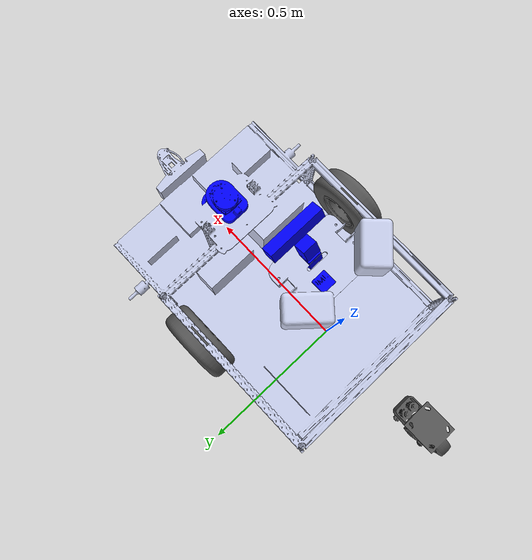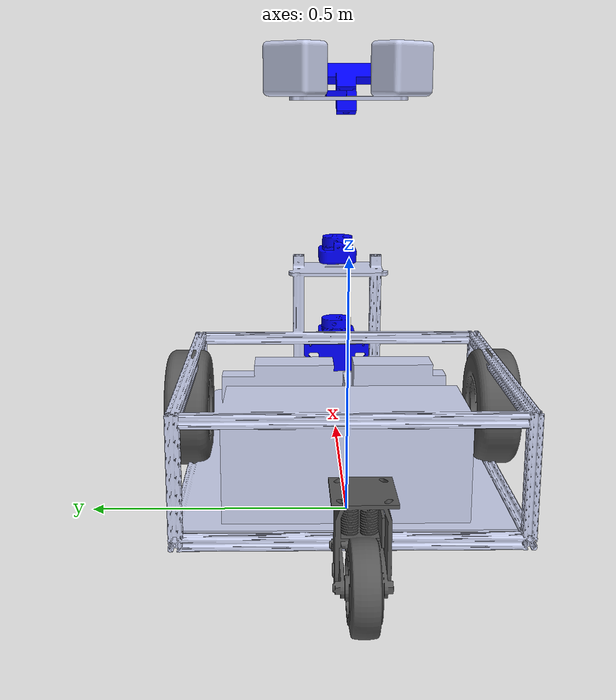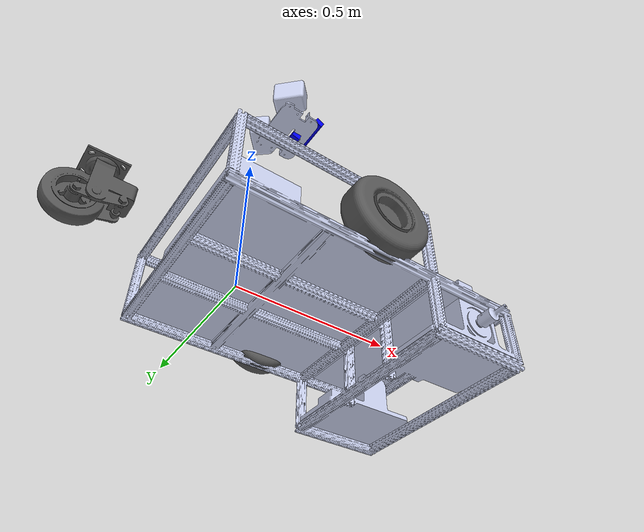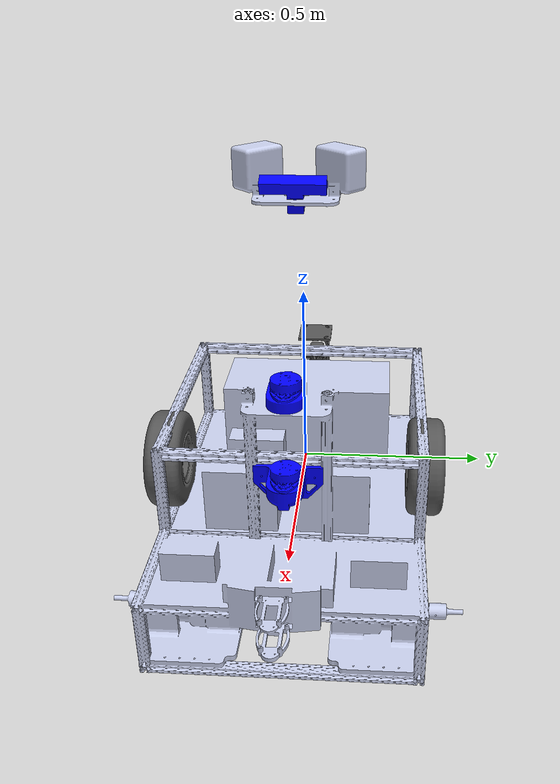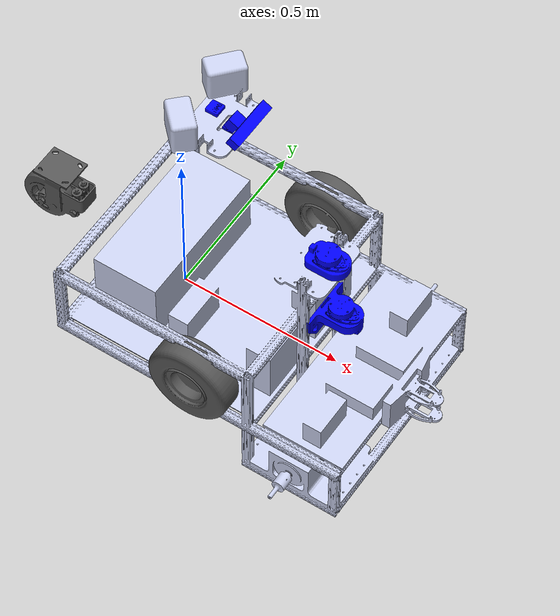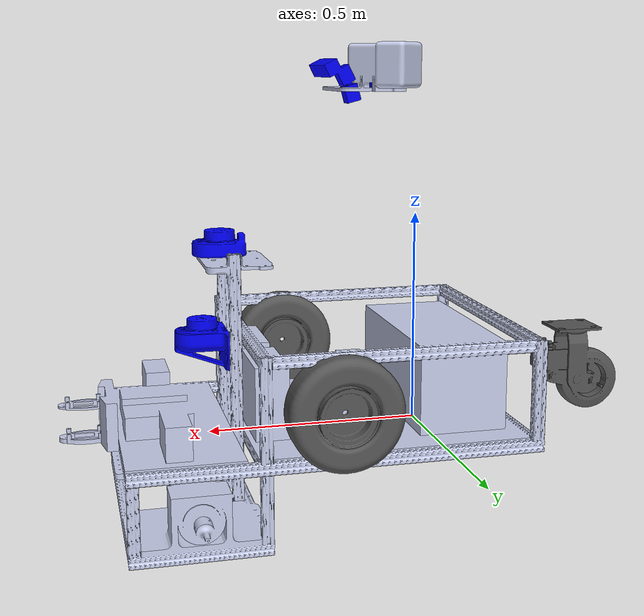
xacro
<?xml version="1.0" encoding="utf-8"?>
<robot name="timbot" xmlns:xacro="http://ros.org/wiki/xacro">

	<!-- Argument to select Gazebo version: 'classic' or 'ignition' -->
	<xacro:arg name="gazebo_version" default="ignition"/>

	<!-- Argument to enable/disable the ZED camera sensor in simulation -->
	<xacro:arg name="enable_camera" default="false"/>

	<!-- Camera settings (only used when enable_camera is true) -->
	<xacro:arg name="camera_fps" default="5"/>
	<xacro:arg name="camera_width" default="320"/>
	<xacro:arg name="camera_height" default="180"/>

	<link name="base_link" />

	<!-- Includes - Select plugins based on Gazebo version -->
	<xacro:if value="${'$(arg gazebo_version)' == 'ignition'}">
		<xacro:include filename="$(find description)/rover_model/urdf/plugins.ignition.xacro"/>
	</xacro:if>
	<xacro:if value="${'$(arg gazebo_version)' == 'classic'}">
		<xacro:include filename="$(find description)/rover_model/urdf/plugins.gazebo.xacro"/>
	</xacro:if>

	<!-- stand_link: origin for anything on the stand; located in the middle, on the top of the stand plate -->
	<xacro:include filename="$(find description)/rover_model/urdf/stand_link.urdf.xacro"/>

	<!-- wheels: associated to wheels that can be moved by a motor and the caster wheel -->
    <xacro:include filename="$(find description)/rover_model/urdf/wheels.urdf.xacro"/>

	<link name="chassis_link">
		<inertial>
			<origin xyz="-0.040859 0.00033673 -0.054592" rpy="0 0 0" />
			<mass value="40.135" />
			<inertia
				ixx="0.58726"
				ixy="1.3916E-05"
				ixz="8.6833E-05"
				iyy="0.27783"
				iyz="1.0234E-06"
				izz="0.67281" />
		</inertial>

		<visual>
			<origin xyz="0 0 0" rpy="0 0 0" />
			<geometry>
				<mesh filename="package://description/rover_model/meshes/chassis_link.STL" />
			</geometry>
			<material name="">
				<color rgba="0.79216 0.81961 0.93333 1" />
			</material>
		</visual>

		<collision>
			<origin xyz="0 0 0" rpy="0 0 0" />
			<geometry>
				<box size="0.9 0.6 0.2"/>
			</geometry>
		</collision>
	</link>

	<joint name="chassis_joint" type="fixed">
		<origin xyz="0.2573 0 0.1301" rpy="0 0 0" />
		<parent link="base_link" />
		<child link="chassis_link" />
		<axis xyz="0 0 0" />
	</joint>

	<gazebo reference="chassis_link">
		<material>Gazebo/Grey</material>
	</gazebo>

	<!-- Upper LIDAR -->
	<link name="top_lidar_link">
		<inertial>
			<origin xyz="0.012061 -0.00053309 -0.018931" rpy="0 0 0" />
			<mass value="0.073082" />
			<inertia
				ixx="1.9579E-05"
				ixy="-1.0452E-07"
				ixz="-4.2823E-07"
				iyy="2.4126E-05"
				iyz="9.3469E-09"
				izz="4.1417E-05" />
		</inertial>

		<visual>
			<origin xyz="0 0 0" rpy="0 0 0" />
			<geometry>
				<mesh filename="package://description/rover_model/meshes/top_lidar_link.STL" />
			</geometry>
			<material name="">
				<color rgba="0 0 1 1" />
			</material>
		</visual>

		<collision>
			<origin xyz="0 0 0" rpy="0 0 0" />
			<geometry>
				<mesh filename="package://description/rover_model/meshes/top_lidar_link.STL" />
			</geometry>
		</collision>
	</link>

	<joint name="top_lidar_joint" type="fixed">
		<origin xyz="0.2092 0.0005 0.3470" rpy="0 0 0" />
		<!-- before z =  0.0056661 -->
		<parent link="chassis_link" />
		<child link="top_lidar_link" />
		<axis xyz="0 0 0" />
	</joint>

	<gazebo reference="top_lidar_link">
		<material>Gazebo/Blue</material>
	</gazebo>

	<!-- Lower LIDAR -->
	<link name="bottom_lidar_link">
		<inertial>
			<origin xyz="-0.044335 2.8732E-05 -0.021084" rpy="0 0 0" />
			<mass value="0.46918" />
			<inertia
				ixx="0.0018061"
				ixy="-1.363E-06"
				ixz="7.5472E-05"
				iyy="0.0004731"
				iyz="8.5341E-07"
				izz="0.001728" />
		</inertial>

		<visual>
			<origin xyz="0 0 0" rpy="0 0 0" />
			<geometry>
				<mesh filename="package://description/rover_model/meshes/bottom_lidar_link.STL" />
			</geometry>
			<material name="">
				<color rgba="0 0 1 1" />
			</material>
		</visual>

		<collision>
			<origin xyz="0 0 0" rpy="0 0 0" />
			<geometry>
				<mesh filename="package://description/rover_model/meshes/bottom_lidar_link.STL" />
			</geometry>
		</collision>
	</link>

	<joint name="bottom_lidar_joint" type="fixed">
		<origin xyz="0.2535 0 0.1438" rpy="0 0 0" />
		<parent link="chassis_link" />
		<child link="bottom_lidar_link" />
		<axis xyz="0 0 0" />
	</joint>

	<gazebo reference="bottom_lidar_link">
		<material>Gazebo/Blue</material>
	</gazebo>

</robot>

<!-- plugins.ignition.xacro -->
<robot name="plugins_ignition" xmlns:xacro="http://ros.org/wiki/xacro">

    <!-- Includes -->
    <xacro:include filename="$(find description)/rover_model/urdf/constants.xacro"/>

    <!-- ========== IGNITION GAZEBO PLUGINS ========== -->
    <!-- These plugins work with Ignition Gazebo (Fortress) instead of Gazebo Classic -->

    <!-- CRITICAL: Sensors system plugin - required for all sensors to work -->
    <gazebo>
        <plugin filename="ignition-gazebo-sensors-system" name="ignition::gazebo::systems::Sensors">
            <render_engine>ogre</render_engine>
        </plugin>
    </gazebo>

    <!-- CRITICAL: IMU system plugin - required for IMU sensor -->
    <gazebo>
        <plugin filename="ignition-gazebo-imu-system" name="ignition::gazebo::systems::Imu"/>
    </gazebo>

    <!-- CRITICAL: NavSat (GPS) system plugin - required for GPS sensor -->
    <gazebo>
        <plugin filename="ignition-gazebo-navsat-system" name="ignition::gazebo::systems::NavSat"/>
    </gazebo>

    <!-- Differential Drive Control -->
    <gazebo>
        <plugin filename="ignition-gazebo-diff-drive-system" name="ignition::gazebo::systems::DiffDrive">
            <left_joint>${wheel_left_joint}</left_joint>
            <right_joint>${wheel_right_joint}</right_joint>
            <wheel_separation>${wheels_separation}</wheel_separation>
            <wheel_radius>${wheel_diameter/2}</wheel_radius>
            <max_linear_acceleration>${wheel_acceleration}</max_linear_acceleration>
            <min_linear_acceleration>-${wheel_acceleration}</min_linear_acceleration>
            <max_angular_acceleration>2.0</max_angular_acceleration>
            <min_angular_acceleration>-2.0</min_angular_acceleration>
            <odom_publish_frequency>30</odom_publish_frequency>
            <topic>/cmd_vel</topic>
            <odom_topic>${diff_drive_odometryTopic}</odom_topic>
            <tf_topic>/tf</tf_topic>
            <frame_id>odom</frame_id>
            <child_frame_id>base_link</child_frame_id>
        </plugin>
    </gazebo>

    <!-- Joint State Publisher (publishes wheel joint states) -->
    <gazebo>
        <plugin filename="ignition-gazebo-joint-state-publisher-system" name="ignition::gazebo::systems::JointStatePublisher">
            <joint_name>${wheel_left_joint}</joint_name>
            <joint_name>${wheel_right_joint}</joint_name>
            <topic>/joint_states</topic>
        </plugin>
    </gazebo>

    <!-- IMU Sensor -->
    <gazebo reference="imu_link">
        <sensor name="imu_sensor" type="imu">
            <always_on>true</always_on>
            <update_rate>${imu_update_rate}</update_rate>
            <visualize>true</visualize>
            <topic>/imu/data</topic>
            <ignition_frame_id>imu_link</ignition_frame_id>
            <enable_metrics>true</enable_metrics>
            <imu>
                <angular_velocity>
                    <x>
                        <noise type="gaussian">
                            <mean>0.0</mean>
                            <stddev>0.0002</stddev>
                        </noise>
                    </x>
                    <y>
                        <noise type="gaussian">
                            <mean>0.0</mean>
                            <stddev>0.0002</stddev>
                        </noise>
                    </y>
                    <z>
                        <noise type="gaussian">
                            <mean>0.0</mean>
                            <stddev>0.0002</stddev>
                        </noise>
                    </z>
                </angular_velocity>
                <linear_acceleration>
                    <x>
                        <noise type="gaussian">
                            <mean>0.0</mean>
                            <stddev>0.017</stddev>
                        </noise>
                    </x>
                    <y>
                        <noise type="gaussian">
                            <mean>0.0</mean>
                            <stddev>0.017</stddev>
                        </noise>
                    </y>
                    <z>
                        <noise type="gaussian">
                            <mean>0.0</mean>
                            <stddev>0.017</stddev>
                        </noise>
                    </z>
                </linear_acceleration>
            </imu>
        </sensor>
    </gazebo>

    <!-- GPS/NavSat Sensor -->
    <gazebo reference="gps_link">
        <sensor name="navsat_sensor" type="navsat">
            <always_on>true</always_on>
            <update_rate>${gps_update_rate}</update_rate>
            <topic>/gps/fix</topic>
            <ignition_frame_id>gps_link</ignition_frame_id>
            <navsat>
                <position_sensing>
                    <horizontal>
                        <noise type="gaussian">
                            <mean>0.0</mean>
                            <stddev>5e-7</stddev>
                        </noise>
                    </horizontal>
                    <vertical>
                        <noise type="gaussian">
                            <mean>0.0</mean>
                            <stddev>0.0</stddev>
                        </noise>
                    </vertical>
                </position_sensing>
                <velocity_sensing>
                    <horizontal>
                        <noise type="gaussian">
                            <mean>0.0</mean>
                            <stddev>0.0</stddev>
                        </noise>
                    </horizontal>
                    <vertical>
                        <noise type="gaussian">
                            <mean>0.0</mean>
                            <stddev>0.0</stddev>
                        </noise>
                    </vertical>
                </velocity_sensing>
            </navsat>
        </sensor>
    </gazebo>

    <!-- Bottom LIDAR (GPU Ray) -->
    <gazebo reference="bottom_lidar_link">
        <sensor name="bottom_lidar" type="gpu_lidar">
            <always_on>true</always_on>
            <update_rate>${laser_update_rate}</update_rate>
            <visualize>${laser_visualize}</visualize>
            <topic>/scan_lower</topic>
            <ignition_frame_id>bottom_lidar_link</ignition_frame_id>
            <lidar>
                <scan>
                    <horizontal>
                        <samples>${laser_horizontal_samples}</samples>
                        <resolution>${laser_horizontal_resolution}</resolution>
                        <min_angle>${laser_horizontal_min_angle}</min_angle>
                        <max_angle>${laser_horizontal_max_angle}</max_angle>
                    </horizontal>
                    <vertical>
                        <samples>1</samples>
                        <resolution>1</resolution>
                        <min_angle>0</min_angle>
                        <max_angle>0</max_angle>
                    </vertical>
                </scan>
                <range>
                    <min>${laser_range_min}</min>
                    <max>${laser_range_max}</max>
                    <resolution>0.01</resolution>
                </range>
                <noise>
                    <type>gaussian</type>
                    <mean>${laser_noise_mean}</mean>
                    <stddev>0.003</stddev>
                </noise>
            </lidar>
        </sensor>
    </gazebo>

    <!-- Top LIDAR (GPU Ray) -->
    <gazebo reference="top_lidar_link">
        <sensor name="top_lidar" type="gpu_lidar">
            <always_on>true</always_on>
            <update_rate>${laser_update_rate}</update_rate>
            <visualize>${laser_visualize}</visualize>
            <topic>/scan_upper</topic>
            <ignition_frame_id>top_lidar_link</ignition_frame_id>
            <lidar>
                <scan>
                    <horizontal>
                        <samples>${laser_horizontal_samples}</samples>
                        <resolution>${laser_horizontal_resolution}</resolution>
                        <min_angle>${laser_horizontal_min_angle}</min_angle>
                        <max_angle>${laser_horizontal_max_angle}</max_angle>
                    </horizontal>
                    <vertical>
                        <samples>1</samples>
                        <resolution>1</resolution>
                        <min_angle>0</min_angle>
                        <max_angle>0</max_angle>
                    </vertical>
                </scan>
                <range>
                    <min>${laser_range_min}</min>
                    <max>${laser_range_max}</max>
                    <resolution>0.01</resolution>
                </range>
                <noise>
                    <type>gaussian</type>
                    <mean>${laser_noise_mean}</mean>
                    <stddev>0.003</stddev>
                </noise>
            </lidar>
        </sensor>
    </gazebo>

    <!-- Stereo Camera (left) — 0 -->
    <xacro:if value="$(arg enable_camera)">
    <gazebo reference="left_camera_link">
        <sensor name="camera_left" type="rgbd_camera">
            <always_on>true</always_on>
            <update_rate>$(arg camera_fps)</update_rate>
            <visualize>false</visualize>
            <topic>/zed_node/left</topic>
            <camera>
                <horizontal_fov>${ZED_image_hfov}</horizontal_fov>
                <image>
                    <width>$(arg camera_width)</width>
                    <height>$(arg camera_height)</height>
                    <format>R8G8B8</format>
                </image>
                <clip>
                    <near>0.3</near>
                    <far>300</far>
                </clip>
                <depth_camera>
                    <clip>
                        <near>0.3</near>
                        <far>300</far>
                    </clip>
                </depth_camera>
                <noise>
                    <type>gaussian</type>
                    <mean>0.0</mean>
                    <stddev>0.007</stddev>
                </noise>
            </camera>
        </sensor>
    </gazebo>
    </xacro:if>

</robot>

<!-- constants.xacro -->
<robot name="timbot_constants" xmlns:xacro="http://ros.org/wiki/xacro">

    <!-- Drivebase -->

    <!-- Chassis -->
    <xacro:property name="chassis_to_base_link_dist" value="0.34041"/>
    <xacro:property name="chassis_to_stand_link_z_dist" value="0.26861"/>
    <xacro:property name="chassis_to_stand_link_x_dist" value="0.178"/>

    <xacro:property name="chassis_link_mass" value="36.95"/>

    <!-- Stand -->

    <!-- Casters -->

    <!-- Wheels -->
    <!-- TODO: Update acceleration and torque parameters when known -->
    <xacro:property name="wheel_left_joint" value="left_wheel_joint"/>
    <xacro:property name="wheel_right_joint" value="right_wheel_joint"/>

    <xacro:property name="wheels_separation" value="0.6744"/>
    <xacro:property name="wheel_diameter" value="0.25"/>

    <xacro:property name="wheel_acceleration" value="5.0"/>
    <xacro:property name="wheel_torque" value="60"/>

    <xacro:property name="wheel_mass" value="3.533"/>

    <!-- Gazebo Motor -->
    <xacro:property name="diff_drive_update_rate" value="30.0"/>

    <xacro:property name="diff_drive_commandTopic" value="/cmd_vel"/>
    <xacro:property name="diff_drive_odometryTopic" value="/wheel_odom"/>

    <xacro:property name="diff_drive_odometryFrame" value="odom"/>
    <xacro:property name="diff_drive_robotBaseFrame" value="base_link"/>

    <xacro:property name="diff_drive_odometrySource" value="encoder"/>

    <xacro:property name="diff_drive_publishWheelTF" value="false"/>
    <xacro:property name="diff_drive_publishOdomTF" value="false"/>
    <xacro:property name="diff_drive_publishTf" value="true"/>
    <xacro:property name="diff_drive_publishWheelJointState" value="true"/>

    <xacro:property name="diff_drive_legacymode" value="false"/>
    <xacro:property name="diff_drive_rosDebugLevel" value="na"/>

    <!--RPlidar A1-->

    <xacro:property name="laser_visualize" value="false"/>
    <xacro:property name="laser_update_rate" value="10"/>

    <xacro:property name="laser_horizontal_resolution" value="1"/>
    <xacro:property name="laser_horizontal_samples" value="1080"/>
    <xacro:property name="laser_field_of_view" value="360"/>
    <xacro:property name="laser_horizontal_min_angle" value="${-0.5*laser_field_of_view*pi/180}"/>
    <xacro:property name="laser_horizontal_max_angle" value="${0.5*laser_field_of_view*pi/180}"/>

    <xacro:property name="laser_range_min" value="0.15"/>
    <xacro:property name="laser_range_max" value="8"/>
    <xacro:property name="laser_resolution_angle" value="0.36"/>
    <xacro:property name="laser_range_resolution" value="${laser_resolution_angle*pi/180}"/>

    <xacro:property name="laser_noise_type" value="gaussian"/>
    <xacro:property name="laser_noise_mean" value="0.0"/>
    <xacro:property name="laser_noise_stddev" value="0.01/3"/>

    <xacro:property name="bottom_laser_topicName" value="/scan_lower"/>
    <xacro:property name="bottom_laser_frameName" value="bottom_lidar_link"/>
    <xacro:property name="top_laser_topicName" value="/scan_upper"/>
    <xacro:property name="top_laser_frameName" value="top_lidar_link"/>

    <xacro:property name="distance_to_second_lidar" value="0.14"/>

    <!-- ZED camera -->
    <!-- NOTE: approx as a rectangular prism -->
    <xacro:property name="ZED_camera_mass" value="0.1587573"/>
    <xacro:property name="ZED_camera_length" value="0.175"/>
    <xacro:property name="ZED_camera_width" value="0.03"/>

    <xacro:property name="ZED_stereo_offset" value="0.12"/>
    <xacro:property name="ZED_camera_pitch" value="${27 * pi/180}"/>
    <!-- ZED image height/width corresponds to image size for 60Hz refresh-->
    <xacro:property name="ZED_image_refresh" value="5"/>
    <xacro:property name="ZED_image_width" value="320"/>
    <xacro:property name="ZED_image_height" value="180"/>
    <xacro:property name="ZED_image_format" value="R8G8B8"/>
    <xacro:property name="ZED_image_hfov" value="${110 * pi/180}"/>

    <xacro:property name="ZED_name" value="zed_node"/>
    <xacro:property name="ZED_always_on" value="true"/>
    <xacro:property name="ZED_update_rate" value="5"/>
    <xacro:property name="ZED_image_topicName" value="/image_raw_color"/>
    <xacro:property name="ZED_image_info_topicName" value="/camera_info"/>
    <xacro:property name="ZED_depth_topicName" value="/depth/image_raw"/>
    <xacro:property name="ZED_depth_info_topicName" value="/depth/camera_info"/>
    <xacro:property name="ZED_depth_points_topicName" value="/depth/points"/>
    <xacro:property name="ZED_frameName" value="left_camera_link_optical"/>

    <!--ZED CAMERA JOINT PARAMETERS-->

    <xacro:property name="ZED_camera_to_top_plate_x" value="${(stand_width / 2.0)-0.01}"/>
    <xacro:property name="ZED_camera_to_top_plate_z" value="0.10098"/>

    <!-- Garmin GPS -->
    <!-- NOTE: approx. as a cylinder, Garmin itself is similar to a hockey puck -->
    <xacro:property name="gps_frame" value="gps_link"/>
    <xacro:property name="gps_topic" value="/gps/fix"/>
    <xacro:property name="gps_vel_topic" value="/gps/fix_velocity"/>
    <xacro:property name="gps_update_rate" value="5.0"/>

    <!-- NOTE: GPS coordinates for UofT St. George Campus -->
    <xacro:property name="ref_lat" value="43.6570"/>
    <xacro:property name="ref_lon" value="-79.3903"/>
    <xacro:property name="ref_alt" value="76.0000"/>

    <xacro:property name="gps_drift" value="0 0 0"/>
    <xacro:property name="gps_vel_drift" value="0.00 0.00 0.00"/>

    <!-- Phidget IMU -->
    <xacro:property name="imu_frame" value="imu_link"/>
    <xacro:property name="imu_topic" value="/imu/data"/>
    <xacro:property name="imu_update_rate" value="128.0"/>

    <xacro:property name="imu_x_dist_to_stand" value="-0.018653"/>
    <xacro:property name="imu_y_dist_to_stand" value="-0.001408"/>
    <xacro:property name="imu_z_dist_to_stand" value="0.009525"/>

</robot>

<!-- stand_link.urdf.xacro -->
<robot name="stand_link" xmlns:xacro="http://ros.org/wiki/xacro">

    <!-- Includes -->
    <xacro:include filename="$(find description)/rover_model/urdf/constants.xacro"/>

    <link name="stand_link">
        <inertial>
            <origin xyz="0.000229157903262472 0.0038685225549956 0.00576901453025613" rpy="0 0 0" />
            <mass value="0.230738007647473" />
            <inertia
                ixx="0.0007751891369661"
                ixy="1.42155279926012E-07"
                ixz="-1.93289911661184E-06"
                iyy="0.000429374438189671"
                iyz="1.9215645736234E-08"
                izz="0.00119774793119647" />
        </inertial>

        <visual>
            <origin xyz="0 0 0" rpy="0 0 0" />
            <geometry>
                <mesh filename="package://description/rover_model/meshes/stand_link.STL" />
            </geometry>
            <material name="">
                <color rgba="0.792156862745098 0.819607843137255 0.933333333333333 1" />
            </material>
        </visual>

        <collision>
            <origin xyz="0 0 0" rpy="0 0 0" />
            <geometry>
                <mesh filename="package://description/rover_model/meshes/stand_link.STL" />
            </geometry>
        </collision>
    </link>

    <joint name="stand_joint" type="fixed">
        <origin xyz="-0.1268 0 0.6548" rpy="0 0 0" />
        <parent link="chassis_link" />
        <child link="stand_link" />
        <axis xyz="0 0 0" />
    </joint>

    <gazebo reference="stand_link">
        <material>Gazebo/Grey</material>
    </gazebo>

    <!-- ZED Camera -->
    <!-- NOTE: this frame is for convenience, multicamera will use the subsequent left camera frames -->
    <link name="zed_link">
        <inertial>
            <origin xyz="0.015551 -5.9022E-12 -0.00052325" rpy="0 0 0" />
            <mass value="0.15372" />
            <inertia
                ixx="0.00037683"
                ixy="5.4859E-14"
                ixz="7.1076E-08"
                iyy="2.3081E-05"
                iyz="1.2981E-12"
                izz="0.00037897" />
        </inertial>

        <visual>
            <origin xyz="0 0 0" rpy="0 0 0" />
            <geometry>
                <mesh filename="package://description/rover_model/meshes/zed_link.STL" />
            </geometry>
            <material name="">
                <color rgba="0 0 1 1" />
            </material>
        </visual>

        <collision>
            <origin xyz="0 0 0" rpy="0 0 0" />
            <geometry>
                <mesh filename="package://description/rover_model/meshes/zed_link.STL" />
            </geometry>
        </collision>
    </link>

    <joint name="zed_joint" type="fixed">
        <origin xyz="0.0736 0 0.06" rpy="0 ${ZED_camera_pitch} 0" />
        <parent link="stand_link" />
        <child link="zed_link" />
        <axis xyz="0 0 0" />
    </joint>

    <gazebo reference="zed_link">
        <material>Gazebo/Blue</material>
    </gazebo>

    <!-- Generate Left Camera frame -->
    <!-- NOTE: Specify frame of left camera (lens) because right one is specified relative to it by the multicamera plugin -->
    <link name="left_camera_link"/>

    <joint name="left_camera_joint" type="fixed">
        <parent link="zed_link"/>
        <child link="left_camera_link"/>
        <origin xyz="0.00001 ${ZED_stereo_offset / 2.0} 0" rpy="0 0 0"/>
    </joint>

    <!-- Generate an optical frame http://www.ros.org/reps/rep-0103.html#suffix-frames so that ros and opencv can operate on the camera frame correctly -->
    <link name="left_camera_link_optical"/>

    <joint name="left_camera_link_optical_joint" type="fixed">
        <parent link="left_camera_link"/>
        <child link="left_camera_link_optical"/>
        <origin xyz="0 0 0" rpy="${-pi/2} 0 ${-pi/2}"/>
    </joint>

    <!-- IMU -->
    <!-- Due to the requirements of cartographer, the imu_link frame is located on same height as base_link, but the model is located on top of the stand -->
    <link name="imu_link">
        <inertial>
            <origin xyz="3.0642E-07 -2.658E-07 0.0062442" rpy="0 0 0" />
            <mass value="0.016518" />
            <inertia
                ixx="1.9791E-06"
                ixy="-5.5078E-12"
                ixz="-2.4742E-11"
                iyy="2.0783E-06"
                iyz="2.5252E-11"
                izz="3.6277E-06" />
        </inertial>

        <visual>
            <origin xyz="0 0 0" rpy="0 0 0" /> <!-- Physical imu located on stand -->
            <!-- z-pos of visual model moved back up to stand height
                 z: imu_z_dist_to_stand + chassis_to_stand_link_z_dist + chassis_to_base_link_dist} -->
            <geometry>
                <mesh filename="package://description/rover_model/meshes/imu_link.STL" />
            </geometry>
            <material name="">
                <color rgba="0 0 1 1" />
            </material>
        </visual>

        <collision>
            <origin xyz="0 0 0" rpy="0 0 0" />
            <geometry>
                <mesh filename="package://description/rover_model/meshes/imu_link.STL" />
            </geometry>
        </collision>
    </link>

    <joint name="imu_joint" type="fixed">
        <origin xyz="0.0969 0.0229 0" rpy="0 0 0" />
        <!-- The x-pos is same as it's actual position on the stand, but z-pos same as base_link
             x: imu_x_dist_to_stand + chassis_to_stand_link_x_dist -->
        <parent link="base_link" /> <!-- The frame origin is centered on base_link -->
        <child link="imu_link" />
        <axis xyz="0 0 0" />
    </joint>

    <gazebo reference="imu_link">
        <material>Gazebo/Blue</material>
    </gazebo>

    <!-- GPS -->
    <link name="gps_link">
        <inertial>
            <origin xyz="6.6071E-09 -4.3415E-07 0.0051035" rpy="0 0 0" />
            <mass value="0.0040365" />
            <inertia
                ixx="1.6183E-07"
                ixy="1.7388E-12"
                ixz="-1.2753E-12"
                iyy="1.6176E-07"
                iyz="-9.0374E-15"
                izz="2.6794E-07" />
        </inertial>

        <visual>
            <origin xyz="0 0 0" rpy="0 0 0" />
            <geometry>
                <mesh filename="package://description/rover_model/meshes/gps_link.STL" />
            </geometry>
            <material name="">
                <color rgba="0 0 1 1" />
            </material>
        </visual>

        <collision>
            <origin xyz="0 0 0" rpy="0 0 0" />
            <geometry>
                <mesh filename="package://description/rover_model/meshes/gps_link.STL" />
            </geometry>
        </collision>
    </link>

    <joint name="gps_joint" type="fixed">
        <origin xyz="-0.0288 0.0274 0.0095015" rpy="0 0 0" />
        <parent link="stand_link" />
        <child link="gps_link" />
        <axis xyz="0 0 1" />
    </joint>

    <gazebo reference="gps_link">
        <material>Gazebo/Blue</material>
    </gazebo>

</robot>

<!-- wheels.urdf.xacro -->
<robot name="wheels" xmlns:xacro="http://ros.org/wiki/xacro">

    <!-- Motor Transmissions (for left+right wheels) -->
    <xacro:macro name="Transmission" params="joint">
        <transmission name="trans_${joint}">
            <type>transmission_interface/SimpleTransmission</type>
            <joint name="${joint}">
                <hardwareInterface>hardware_interface/EffortJointInterface</hardwareInterface>
            </joint>
            <actuator name="${joint}_motor"/>
        </transmission>
    </xacro:macro>

    <!-- Left Wheel -->
    <link name="left_wheel_link">
        <inertial>
            <origin xyz="-8.2128E-11 0 9.544E-08" rpy="0 0 0" />
            <mass value="3.533" />
            <inertia
                ixx="0.017314"
                ixy="-5.4493E-20"
                ixz="3.6017E-11"
                iyy="0.030562"
                iyz="1.8924E-18"
                izz="0.017314" />
        </inertial>

        <visual>
            <origin xyz="0 0 0" rpy="0 0 0" />
            <geometry>
                <mesh filename="package://description/rover_model/meshes/left_wheel_link.STL" />
            </geometry>
            <material name="">
                <color rgba="0.34118 0.34118 0.34118 1" />
            </material>
        </visual>

        <collision>
            <origin xyz="0 0 0" rpy="1.5707 0 0" /> <geometry>
                <cylinder length="0.1" radius="0.125"/>
            </geometry>
        </collision>
    </link>

    <joint name="left_wheel_joint" type="continuous">
        <origin xyz="0 0.337221649344587 0" rpy="0 0 0" />
        <parent link="chassis_link" />
        <child link="left_wheel_link" />
        <axis xyz="0 -1 0" />

        <limit effort="100.0" velocity="20.0"/>
    </joint>

    <gazebo reference="left_wheel_link">
        <material>Gazebo/Black</material>
        <mu1 value="100.0"/>
        <mu2 value="100.0"/>
        <kp value="10000000.0" />
        <kd value="1.0" />
    </gazebo>

    <xacro:Transmission joint="left_wheel_joint"/>

    <!-- Right Wheel -->
    <link name="right_wheel_link">
        <inertial>
            <origin xyz="0 0 0" rpy="0 0 0" />
            <mass value="3.533" />
            <inertia
                ixx="0.017314"
                ixy="-5.2822E-19"
                ixz="-3.6017E-11"
                iyy="0.030562"
                iyz="-4.3099E-19"
                izz="0.017314" />
        </inertial>

        <visual>
            <origin xyz="0 0 0" rpy="0 0 0" />
            <geometry>
                <mesh filename="package://description/rover_model/meshes/right_wheel_link.STL" />
            </geometry>
            <material name="">
                <color rgba="0.34118 0.34118 0.34118 1" />
            </material>
        </visual>

        <collision>
            <origin xyz="0 0 0" rpy="1.5707 0 0" /> <geometry>
                <cylinder length="0.1" radius="0.125"/>
            </geometry>
        </collision>
    </link>

    <joint name="right_wheel_joint" type="continuous">
        <origin xyz="0 -0.337221649344586 0" rpy="0 0 0" />
        <parent link="chassis_link" />
        <child link="right_wheel_link" />
        <axis xyz="0 -1 0" />

        <limit effort="100.0" velocity="20.0"/>
    </joint>

    <gazebo reference="right_wheel_link">
        <material>Gazebo/Black</material>
        <mu1 value="100.0"/>
        <mu2 value="100.0"/>
        <kp value="10000000.0" />
        <kd value="1.0" />
    </gazebo>

    <xacro:Transmission joint="right_wheel_joint"/>

    <!-- Caster Wheel -->
    <link name="caster_link">
        <inertial>
            <origin xyz="-0.02078 3.2838E-05 -0.11441" rpy="0 0 0" />
            <mass value="1.0439" />
            <inertia
                ixx="0.0025162"
                ixy="2.4976E-07"
                ixz="8.7516E-05"
                iyy="0.0036508"
                iyz="2.0109E-06"
                izz="0.0021048" />
        </inertial>

        <visual>
            <origin xyz="0 0 0" rpy="0 0 0" />
            <geometry>
                <mesh filename="package://description/rover_model/meshes/caster_link.STL" />
            </geometry>
            <material name="">
                <color rgba="0.34118 0.34118 0.34118 1" />
            </material>
        </visual>

        <collision>
            <origin xyz="0 0 0" rpy="0 0 0" />
            <geometry>
                <mesh filename="package://description/rover_model/meshes/caster_link.STL" />
            </geometry>
        </collision>
    </link>

    <joint name="caster_joint" type="fixed">
        <origin xyz="-0.67301 7.5398E-05 0.070217" rpy="0 0 0" />
        <parent link="chassis_link" />
        <child link="caster_link" />
        <axis xyz="0 0 0" />
    </joint>

    <gazebo reference="caster_link">
        <material>Gazebo/Black</material>
        <mu1 value="100.0"/>
        <mu2 value="100.0"/>
        <kp value="10000000.0" />
        <kd value="1.0" />
    </gazebo>

</robot>
